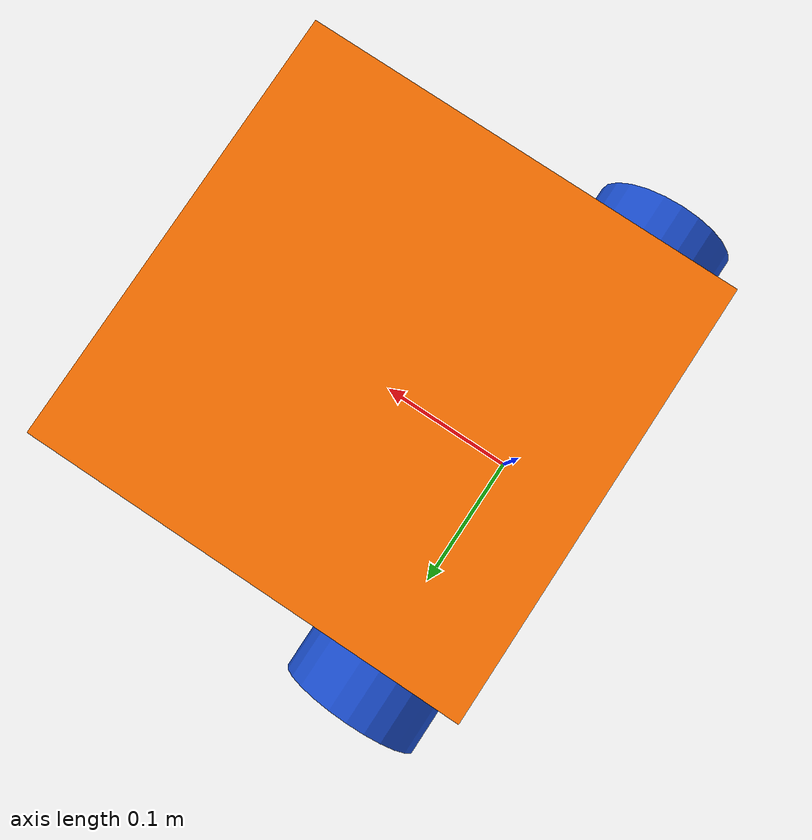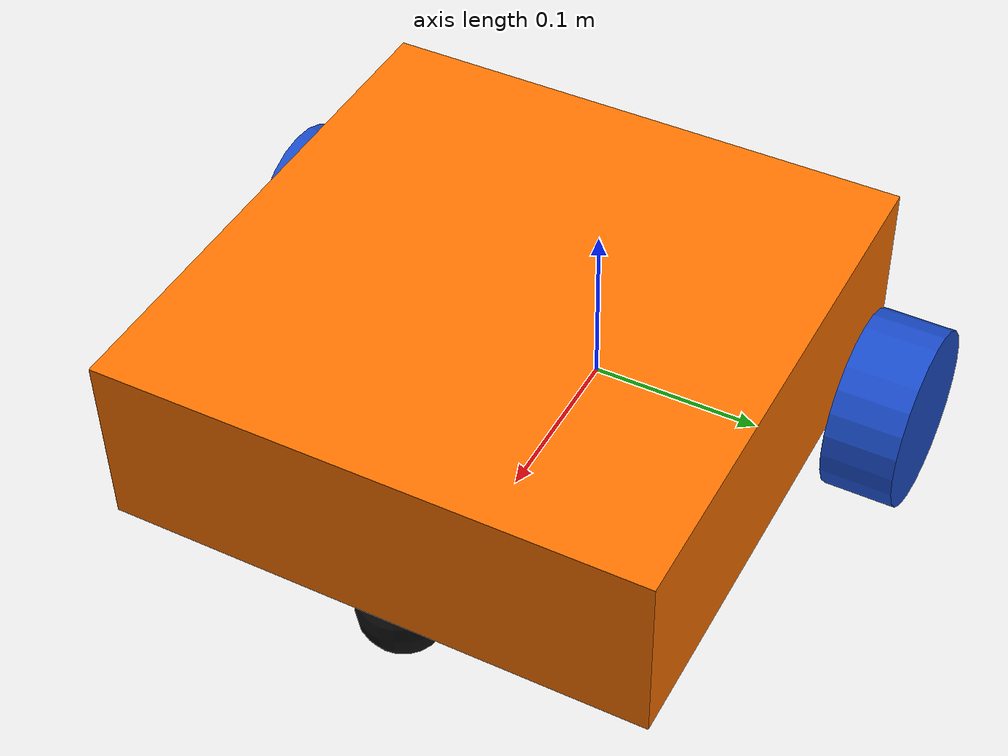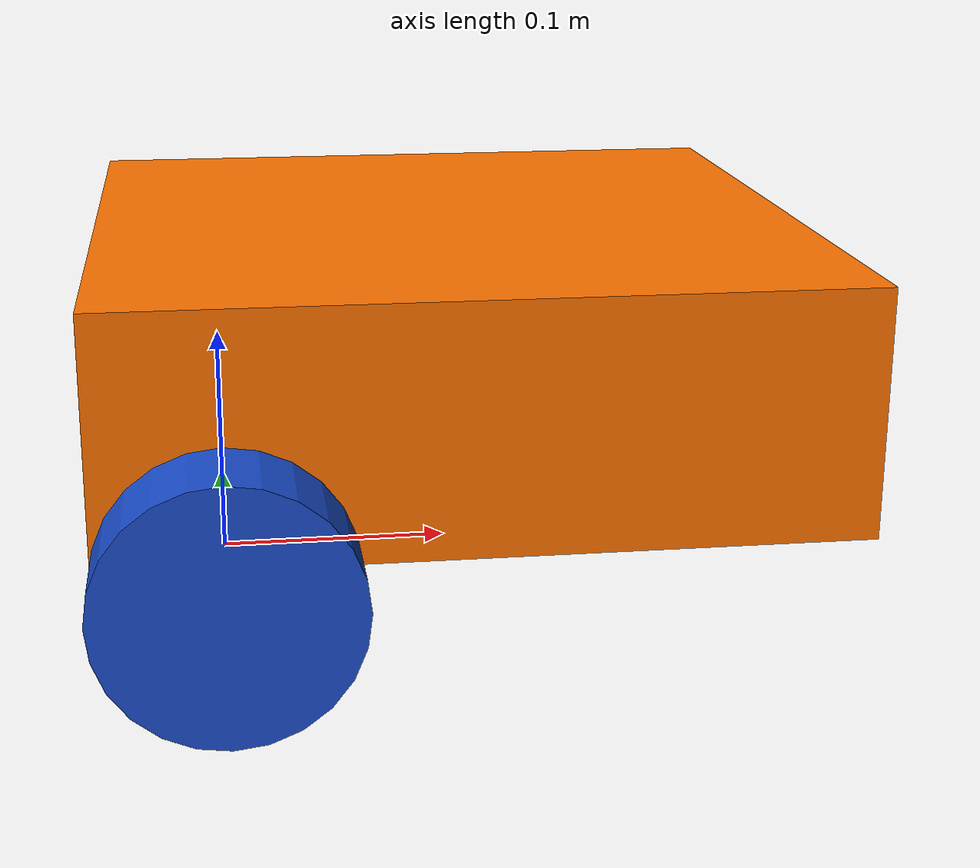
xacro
<?xml version="1.0"?>
<robot xmlns:xacro="http://www.ros.org/wiki/xacro">

  <!-- Include Inertial Macros and Materials -->
  <xacro:include filename="inertial_macros.xacro"/>
  <xacro:include filename="materials.xacro"/>

  <!-- ROBOT DIMENSIONS & CONSTANTS                                              -->
  <xacro:property name="chassis_length" value="0.30"/>   <!-- X dimension (m) -->
  <xacro:property name="chassis_width"  value="0.30"/>   <!-- Y dimension (m) -->
  <xacro:property name="chassis_height" value="0.10"/>   <!-- Z dimension (m) -->
  <xacro:property name="chassis_mass"   value="2.5"/>    <!-- Mass (kg) -->

  <xacro:property name="wheel_radius"   value="0.05"/>   <!-- Radius (5 cm = 0.05 m) -->
  <xacro:property name="wheel_length"   value="0.04"/>   <!-- Thickness/width (4 cm) -->
  <xacro:property name="wheel_mass"     value="0.2"/>    <!-- Wheel mass (kg) -->
  <xacro:property name="wheel_offset_y" value="0.175"/>  <!-- Half-track (wheelbase/2 = 35cm/2) -->

  <xacro:property name="caster_radius"  value="0.025"/>  <!-- Caster ball radius (2.5 cm) -->
  <xacro:property name="caster_mass"    value="0.1"/>    <!-- Caster mass (kg) -->
  <xacro:property name="caster_offset_x" value="0.22"/>  <!-- Front position along X -->

  <!-- 1. BASE FOOTPRINT (TF Root on Ground)                                      -->
  <!-- base_footprint is a 2D projection of the robot center on the ground floor.  -->
  <!-- Standard ROS coordinate frame: Z=0 at contact plane with the floor.        -->
  <link name="base_footprint"/>

  <!-- Joint: base_footprint -> base_link -->
  <!-- Elevates the robot coordinate origin by wheel_radius (0.05m) above ground -->
  <joint name="base_footprint_joint" type="fixed">
    <parent link="base_footprint"/>
    <child link="base_link"/>
    <origin xyz="0 0 ${wheel_radius}" rpy="0 0 0"/>
  </joint>

  <!-- 2. BASE LINK (Center of Drive Axle)                                       -->
  <!-- The kinematic center of rotation for a differential-drive robot.          -->
  <!-- X: Forward, Y: Left, Z: Up                                                -->
  <link name="base_link"/>

  <!-- 3. CHASSIS LINK                                                           -->
  <!-- The main robot body. Offset forward so wheels sit near the rear axle.    -->
  <joint name="chassis_joint" type="fixed">
    <parent link="base_link"/>
    <child link="chassis"/>
    <!-- Chassis center is offset along X by 0.10m and Z by 0.05m above axle -->
    <origin xyz="0.10 0 0.05" rpy="0 0 0"/>
  </joint>

  <link name="chassis">
    <!-- Visual Geometry (Rendered in RViz / Gazebo) -->
    <visual>
      <origin xyz="0 0 0" rpy="0 0 0"/>
      <geometry>
        <box size="${chassis_length} ${chassis_width} ${chassis_height}"/>
      </geometry>
      <material name="orange"/>
    </visual>

    <!-- Collision Geometry (Used by Physics Engine) -->
    <collision>
      <origin xyz="0 0 0" rpy="0 0 0"/>
      <geometry>
        <box size="${chassis_length} ${chassis_width} ${chassis_height}"/>
      </geometry>
    </collision>

    <!-- Inertial Dynamics (Rigid body physics for simulation) -->
    <xacro:inertial_box mass="${chassis_mass}" x="${chassis_length}" y="${chassis_width}" z="${chassis_height}">
      <origin xyz="0 0 0" rpy="0 0 0"/>
    </xacro:inertial_box>
  </link>

  <!-- 4. LEFT DRIVE WHEEL                                                       -->
  <!-- Continuous rotational joint along Y-axis of base_link.                     -->
  <!-- Cylinder in URDF defaults along Z axis, so rotated by -pi/2 around X.     -->
  <joint name="left_wheel_joint" type="continuous">
    <parent link="base_link"/>
    <child link="left_wheel_link"/>
    <!-- Left wheel placed at +Y (0.175m from center) -->
    <origin xyz="0 ${wheel_offset_y} 0" rpy="-${pi/2} 0 0"/>
    <axis xyz="0 0 1"/>
  </joint>

  <link name="left_wheel_link">
    <visual>
      <origin xyz="0 0 0" rpy="0 0 0"/>
      <geometry>
        <cylinder radius="${wheel_radius}" length="${wheel_length}"/>
      </geometry>
      <material name="blue"/>
    </visual>

    <collision>
      <origin xyz="0 0 0" rpy="0 0 0"/>
      <geometry>
        <cylinder radius="${wheel_radius}" length="${wheel_length}"/>
      </geometry>
    </collision>

    <xacro:inertial_cylinder mass="${wheel_mass}" length="${wheel_length}" radius="${wheel_radius}">
      <origin xyz="0 0 0" rpy="0 0 0"/>
    </xacro:inertial_cylinder>
  </link>

  <!-- 5. RIGHT DRIVE WHEEL                                                      -->
  <!-- Continuous rotational joint along Y-axis of base_link.                     -->
  <!-- Right wheel rotated by +pi/2 around X with axis pointing outward.         -->
  <joint name="right_wheel_joint" type="continuous">
    <parent link="base_link"/>
    <child link="right_wheel_link"/>
    <!-- Right wheel placed at -Y (-0.175m from center) -->
    <origin xyz="0 -${wheel_offset_y} 0" rpy="${pi/2} 0 0"/>
    <axis xyz="0 0 -1"/>
  </joint>

  <link name="right_wheel_link">
    <visual>
      <origin xyz="0 0 0" rpy="0 0 0"/>
      <geometry>
        <cylinder radius="${wheel_radius}" length="${wheel_length}"/>
      </geometry>
      <material name="blue"/>
    </visual>

    <collision>
      <origin xyz="0 0 0" rpy="0 0 0"/>
      <geometry>
        <cylinder radius="${wheel_radius}" length="${wheel_length}"/>
      </geometry>
    </collision>

    <xacro:inertial_cylinder mass="${wheel_mass}" length="${wheel_length}" radius="${wheel_radius}">
      <origin xyz="0 0 0" rpy="0 0 0"/>
    </xacro:inertial_cylinder>
  </link>

  <!-- 6. CASTER WHEEL (Front Support Ball)                                      -->
  <!-- Spherical omnidirectional passive support to balance differential drive.   -->
  <!-- Placed at front center (X = 0.22m).                                       -->
  <!-- Origin Z = -0.025m so bottom of sphere touches ground at Z = 0.          -->
  <joint name="caster_wheel_joint" type="fixed">
    <parent link="base_link"/>
    <child link="caster_wheel_link"/>
    <!-- Offset: X = front (0.22m), Y = center (0.0m), Z = -0.025m -->
    <origin xyz="${caster_offset_x} 0 -${caster_radius}" rpy="0 0 0"/>
  </joint>

  <link name="caster_wheel_link">
    <visual>
      <origin xyz="0 0 0" rpy="0 0 0"/>
      <geometry>
        <sphere radius="${caster_radius}"/>
      </geometry>
      <material name="black"/>
    </visual>

    <collision>
      <origin xyz="0 0 0" rpy="0 0 0"/>
      <geometry>
        <sphere radius="${caster_radius}"/>
      </geometry>
    </collision>

    <xacro:inertial_sphere mass="${caster_mass}" radius="${caster_radius}">
      <origin xyz="0 0 0" rpy="0 0 0"/>
    </xacro:inertial_sphere>
  </link>

  <!-- Gazebo friction parameters for caster wheel (frictionless ball) -->
  <gazebo reference="caster_wheel_link">
    <material>Gazebo/Black</material>
    <mu1 value="0.001"/>
    <mu2 value="0.001"/>
  </gazebo>

  <gazebo reference="chassis">
    <material>Gazebo/Orange</material>
  </gazebo>

  <gazebo reference="left_wheel_link">
    <material>Gazebo/Blue</material>
  </gazebo>

  <gazebo reference="right_wheel_link">
    <material>Gazebo/Blue</material>
  </gazebo>

</robot>

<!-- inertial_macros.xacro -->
<robot xmlns:xacro="http://www.ros.org/wiki/xacro">

  <!-- INERTIAL PROPERTY MACROS                                                  -->
  <!-- Standard formulas for calculating rigid-body inertia matrices             -->

  <!-- Solid Box Inertia: mass, x (depth), y (width), z (height) -->
  <xacro:macro name="inertial_box" params="mass x y z *origin">
    <inertial>
      <xacro:insert_block name="origin"/>
      <mass value="${mass}" />
      <inertia ixx="${(1/12) * mass * (y*y + z*z)}" ixy="0.0" ixz="0.0"
               iyy="${(1/12) * mass * (x*x + z*z)}" iyz="0.0"
               izz="${(1/12) * mass * (x*x + y*y)}" />
    </inertial>
  </xacro:macro>

  <!-- Solid Cylinder Inertia: mass, length (along z), radius -->
  <xacro:macro name="inertial_cylinder" params="mass length radius *origin">
    <inertial>
      <xacro:insert_block name="origin"/>
      <mass value="${mass}" />
      <inertia ixx="${(1/12) * mass * (3*radius*radius + length*length)}" ixy="0.0" ixz="0.0"
               iyy="${(1/12) * mass * (3*radius*radius + length*length)}" iyz="0.0"
               izz="${(1/2) * mass * (radius*radius)}" />
    </inertial>
  </xacro:macro>

  <!-- Solid Sphere Inertia: mass, radius -->
  <xacro:macro name="inertial_sphere" params="mass radius *origin">
    <inertial>
      <xacro:insert_block name="origin"/>
      <mass value="${mass}" />
      <inertia ixx="${(2/5) * mass * (radius*radius)}" ixy="0.0" ixz="0.0"
               iyy="${(2/5) * mass * (radius*radius)}" iyz="0.0"
               izz="${(2/5) * mass * (radius*radius)}" />
    </inertial>
  </xacro:macro>

</robot>

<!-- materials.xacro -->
<robot xmlns:xacro="http://www.ros.org/wiki/xacro">

  <!-- RVIZ COLOR DEFINITIONS                                                    -->

  <material name="white">
    <color rgba="1.0 1.0 1.0 1.0" />
  </material>

  <material name="orange">
    <color rgba="1.0 0.45 0.0 1.0" />
  </material>

  <material name="blue">
    <color rgba="0.1 0.3 0.8 1.0" />
  </material>

  <material name="black">
    <color rgba="0.05 0.05 0.05 1.0" />
  </material>

  <material name="grey">
    <color rgba="0.6 0.6 0.6 1.0" />
  </material>

  <material name="red">
    <color rgba="0.85 0.1 0.1 1.0" />
  </material>

</robot>
